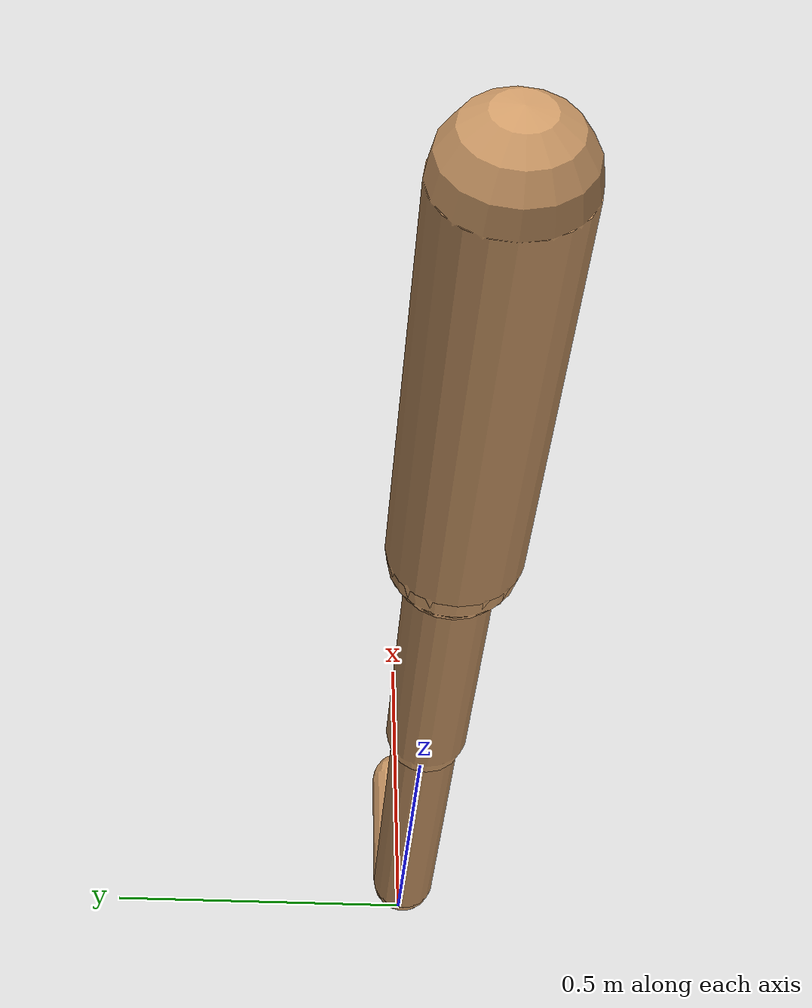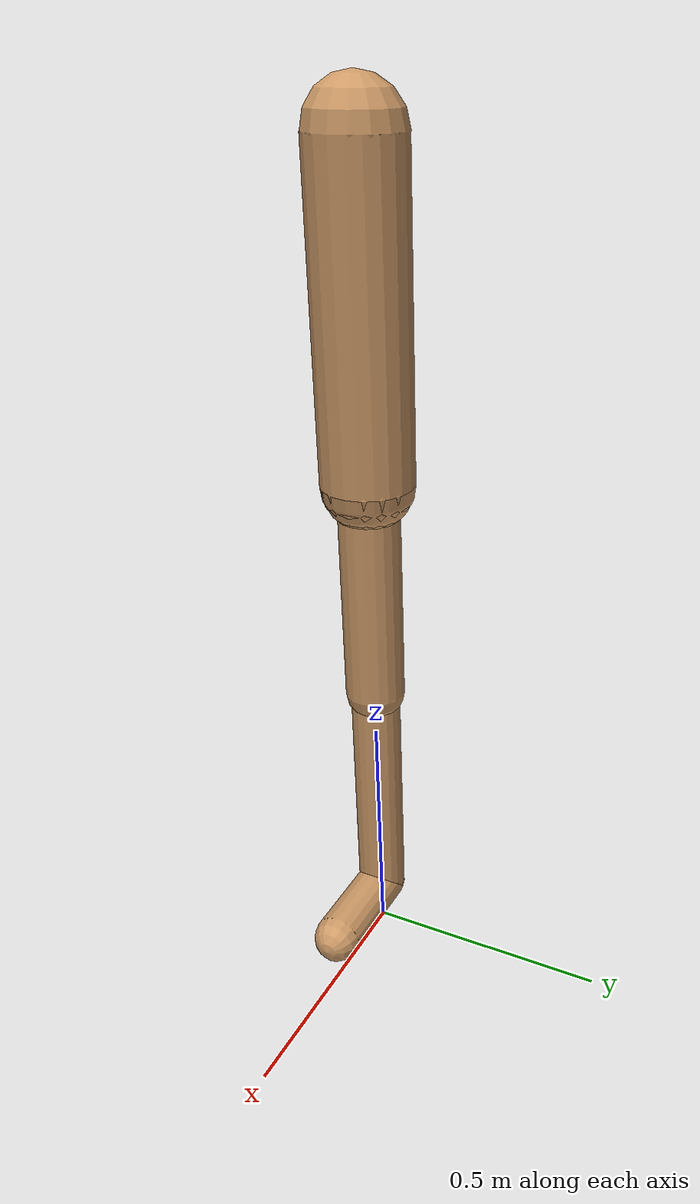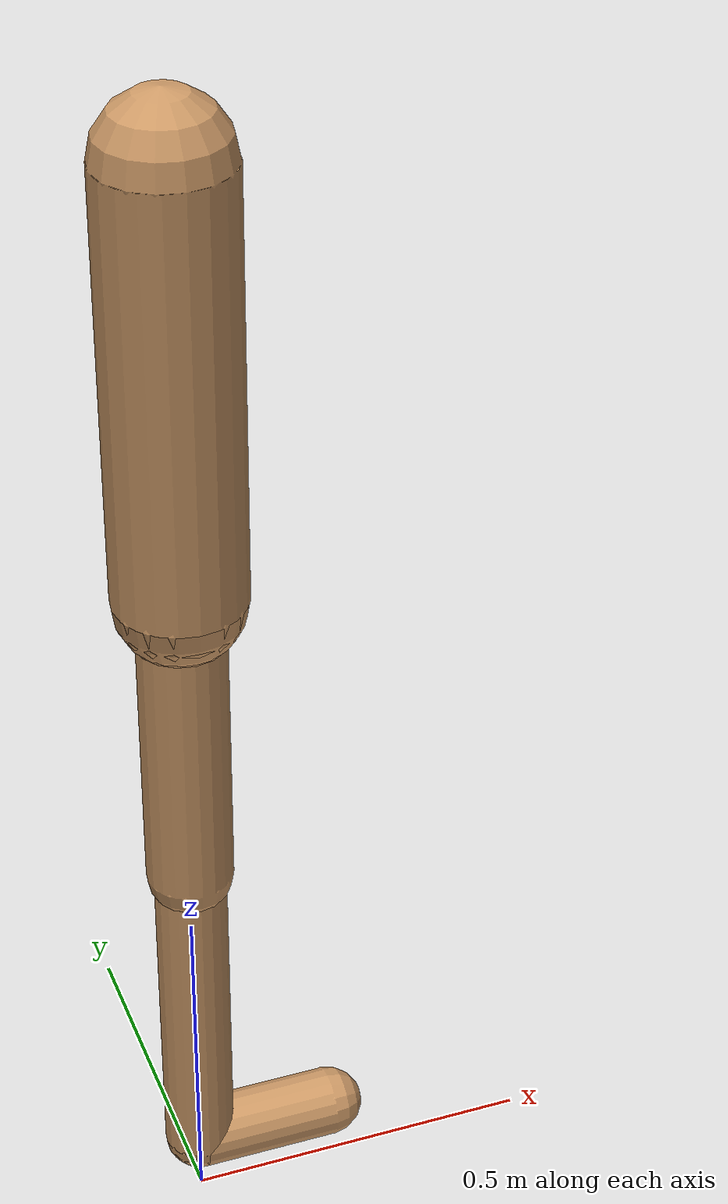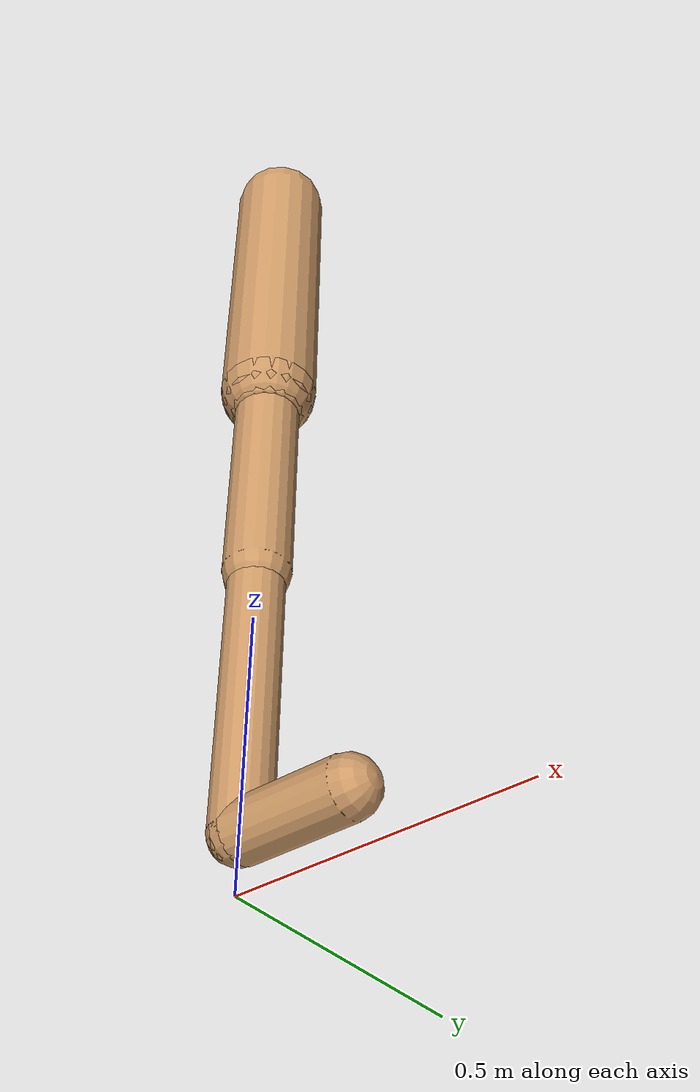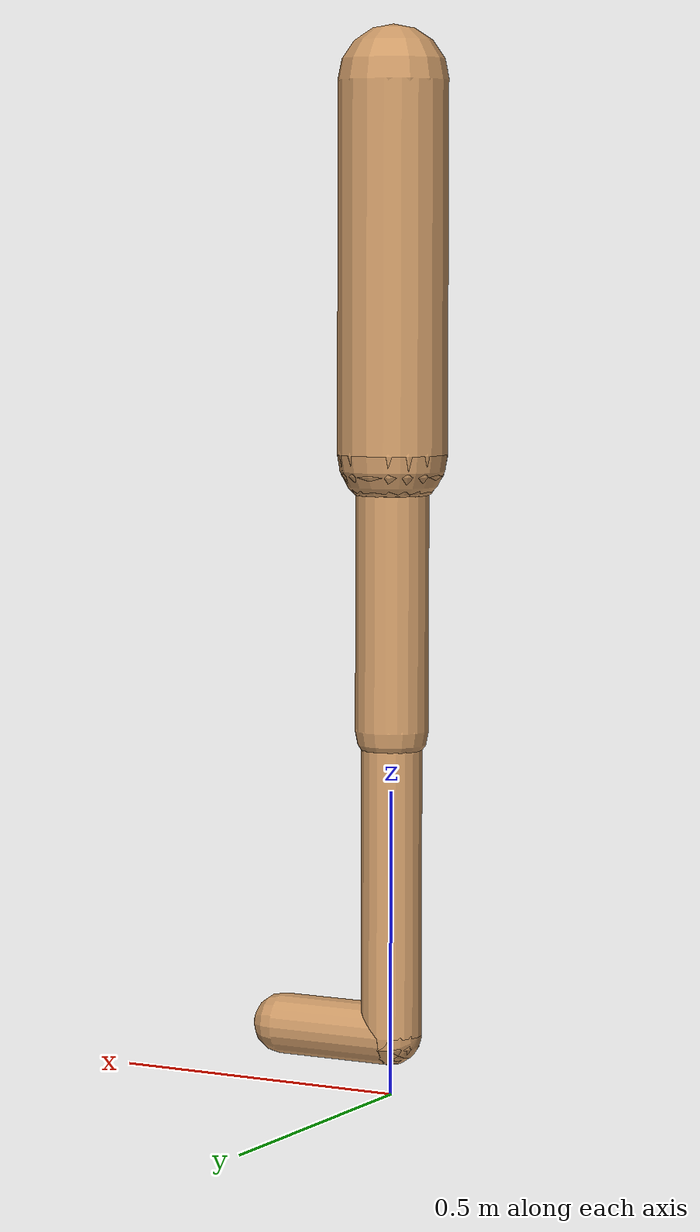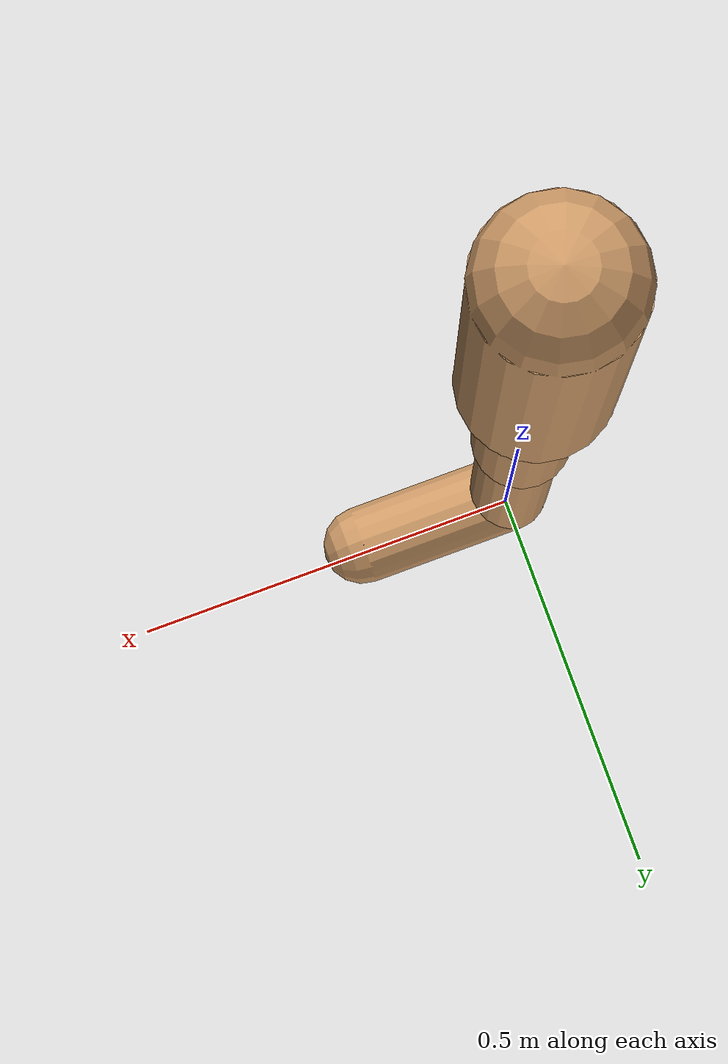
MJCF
<mujoco model="walker2d">
  <compiler angle="degree" coordinate="global" inertiafromgeom="true"/>
  <default>
    <joint armature="0.01" damping=".1" limited="true"/>
    <geom conaffinity="0" condim="3" contype="1" density="1000" friction="1.2 .1 .1" rgba="0.8 0.6 .4 1"/>
  </default>
  <option integrator="RK4" iterations="50" solver="PGS" timestep="0.003" />
  <worldbody>
    <!-- CHANGES: see hopper.xml -->
    <body name="pelvis">
      <joint armature="0" axis="1 0 0" damping="0" limited="false" name="ignorex" pos="0 0 0" stiffness="0" type="slide"/>
      <joint armature="0" axis="0 0 1" damping="0" limited="false" name="ignorez" pos="0 0 0" stiffness="0" type="slide"/>
      <joint armature="0" axis="0 1 0" damping="0" limited="false" name="ignorey" pos="0 0 0" stiffness="0" type="hinge"/>
      <geom pos="0 0 1.05" name="pelvis_geom" size="0.09" type="sphere"/>
      <body name="torso">
        <joint axis="0 1 0" name="torso_joint" pos="0 0 1.05" range="-5 60" type="hinge"/>
        <geom fromto="0 0 1.65 0 0 1.05" name="torso_geom" size="0.09" type="capsule"/>
      </body>
      <body name="thigh">
        <joint axis="0 1 0" name="thigh_joint" pos="0 0 1.05" range="-90 40" type="hinge"/>
        <geom fromto="0 0 1.05 0 0 0.6" name="thigh_geom" size="0.06" type="capsule"/>
        <body name="leg">
          <joint axis="0 1 0" name="leg_joint" pos="0 0 0.6" range="0 150" type="hinge"/>
          <geom fromto="0 0 0.6 0 0 0.1" name="leg_geom" size="0.05" type="capsule"/>
          <body name="foot">
            <joint axis="0 1 0" name="foot_joint" pos="0 0 0.1" range="-20 20" type="hinge"/>
            <geom fromto="-0.0 0 0.1 0.2 0 0.1" name="foot_geom" size="0.05" type="capsule"/>
          </body>
        </body>
      </body>
      <!-- copied and then replace thigh->thigh_left, leg->leg_left, foot->foot_right -->
      <body name="thigh_left">
        <joint axis="0 1 0" name="thigh_left_joint" pos="0 0 1.05" range="-90 40" type="hinge"/>
        <geom fromto="0 0 1.05 0 0 0.6" name="thigh_left_geom" rgba=".7 .3 .6 1" size="0.06" type="capsule"/>
        <body name="leg_left">
          <joint axis="0 1 0" name="leg_left_joint" pos="0 0 0.6" range="0 150" type="hinge"/>
          <geom fromto="0 0 0.6 0 0 0.1" name="leg_left_geom" rgba=".7 .3 .6 1" size="0.05" type="capsule"/>
          <body name="foot_left">
            <joint axis="0 1 0" name="foot_left_joint" pos="0 0 0.1" range="-20 20" type="hinge"/>
            <geom fromto="-0.0 0 0.1 0.2 0 0.1" name="foot_left_geom" rgba=".7 .3 .6 1" size="0.05" type="capsule"/>
          </body>
        </body>
      </body>
    </body>
  </worldbody>
  <actuator>
    <motor ctrllimited="true" ctrlrange="-1.0 1.0" gear="100" joint="torso_joint"/>
    <motor ctrllimited="true" ctrlrange="-1.0 1.0" gear="100" joint="thigh_joint"/>
    <motor ctrllimited="true" ctrlrange="-1.0 1.0" gear="100" joint="leg_joint"/>
    <motor ctrllimited="true" ctrlrange="-1.0 1.0" gear="100" joint="foot_joint"/>
    <motor ctrllimited="true" ctrlrange="-1.0 1.0" gear="100" joint="thigh_left_joint"/>
    <motor ctrllimited="true" ctrlrange="-1.0 1.0" gear="100" joint="leg_left_joint"/>
    <motor ctrllimited="true" ctrlrange="-1.0 1.0" gear="100" joint="foot_left_joint"/>
  </actuator>
</mujoco>
